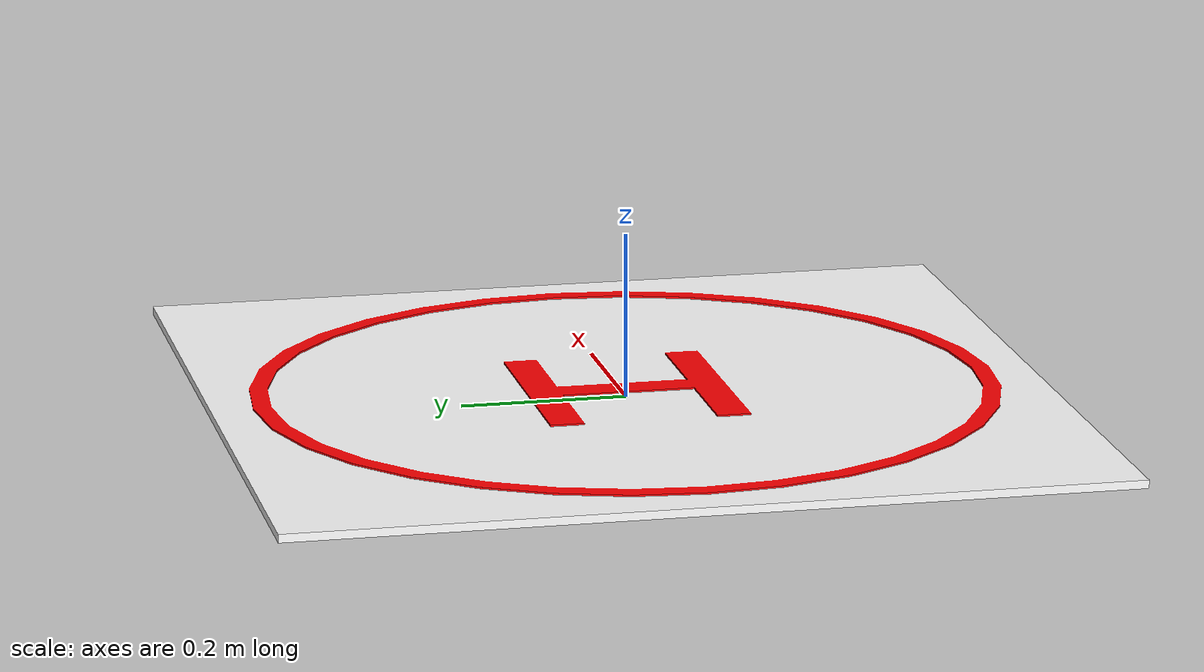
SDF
<?xml version='1.0'?>
<sdf version='1.6'>
  <model name='landing_pad'>
    <link name='link'>
      <inertial>
        <mass>1</mass>
        <inertia>
          <ixx>0.166667</ixx>
          <ixy>0</ixy>
          <ixz>0</ixz>
          <iyy>0.166667</iyy>
          <iyz>0</iyz>
          <izz>0.166667</izz>
        </inertia>
        <pose frame=''>0 0 0 0 -0 0</pose>
      </inertial>
      <pose frame=''>0 0 0 0 -0 0</pose>
      <gravity>0</gravity>
      <self_collide>0</self_collide>
      <kinematic>0</kinematic>
      <enable_wind>0</enable_wind>
      <collision name='base_link_inertia_collision'>
        <pose>0 0 0.015 0 0 0</pose>
        <geometry>
          <box>
            <size>1 1 0.03</size>
          </box>
        </geometry>
        <surface>
          <contact>
            <ode>
              <min_depth>0.001</min_depth>
              <max_vel>0</max_vel>
            </ode>
          </contact>
          <friction>
            <ode>
              <mu>1</mu>
              <mu2>1</mu2>
            </ode>
          </friction>
        </surface>
      </collision>
      <visual name='visual'>
        <pose>0 0 0 0 0 1.57</pose>
        <geometry>
          <mesh>
            <scale>1 1 1</scale>
            <uri>model://landing_pad/meshes/landing_pad.dae</uri>
          </mesh>
        </geometry>
      </visual>
    </link>
    <static>0</static>
    <allow_auto_disable>1</allow_auto_disable>
  </model>
</sdf>
